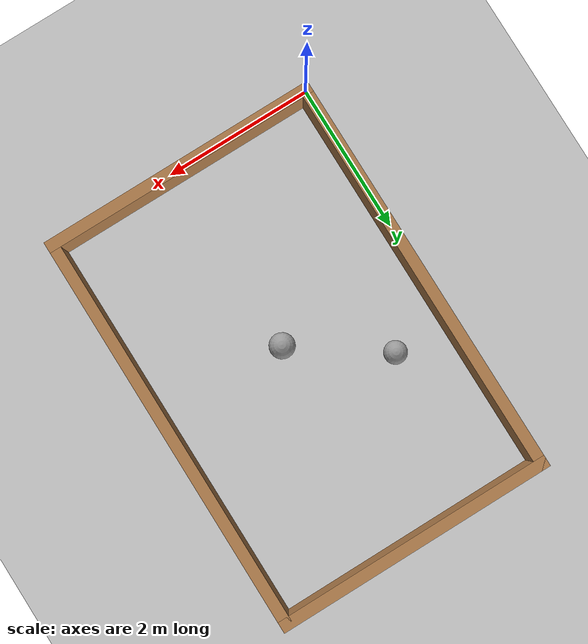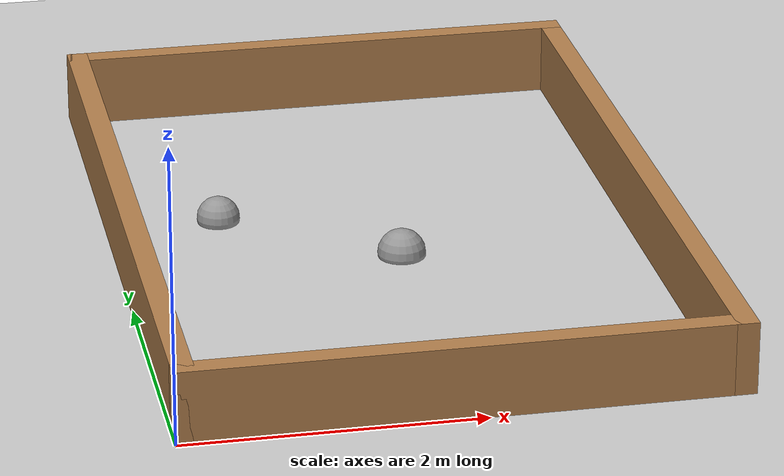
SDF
<sdf version="1.6">
 <world name="default">
  <light name="sun" type="directional">
   <pose>0 0 10 0 -0 0</pose>
   <diffuse>0.8 0.8 0.8 1</diffuse>
   <specular>0.2 0.2 0.2 1</specular>
   <attenuation>
    <range>1000</range>
    <constant>0.9</constant>
    <linear>0.01</linear>
    <quadratic>0.001</quadratic>
   </attenuation>
   <direction>-0.5 0.1 -0.9</direction>
  </light>
  <model name="ground_plane">
   <static>1</static>
   <link name="link">
    <collision name="collision">
     <geometry><plane><normal>0 0 1</normal><size>100 100</size></plane></geometry>
     <surface>
      <contact><collide_bitmask>65535</collide_bitmask></contact>
      <friction><ode><mu>100</mu><mu2>50</mu2></ode></friction>
     </surface>
    </collision>
    <visual name="visual">
     <cast_shadows>0</cast_shadows>
     <geometry><plane><normal>0 0 1</normal><size>100 100</size></plane></geometry>
     <material>
      <script><uri>file://media/materials/scripts/gazebo.material</uri><name>Gazebo/Grey</name></script>
     </material>
    </visual>
   </link>
  </model>
  <gravity>0 0 -9.8</gravity>
  <magnetic_field>6e-06 2.3e-05 -4.2e-05</magnetic_field>
  <atmosphere type="adiabatic"/>
  <physics name="default_physics" default="0" type="ode">
   <max_step_size>0.01</max_step_size>
   <real_time_factor>1</real_time_factor>
   <real_time_update_rate>100</real_time_update_rate>
  </physics>
  <scene><ambient>0.4 0.4 0.4 1</ambient><background>0.7 0.7 0.7 1</background><shadows>0</shadows></scene>
  <spherical_coordinates>
   <surface_model>EARTH_WGS84</surface_model>
   <latitude_deg>0</latitude_deg>
   <longitude_deg>0</longitude_deg>
   <elevation>0</elevation>
   <heading_deg>0</heading_deg>
  </spherical_coordinates>
  <model name="moon_arena">
   <pose>1.71379 2.75223 0 0 -0 0</pose>
   <link name="Wall_0">
    <collision name="Wall_0_Collision">
     <geometry><box><size>3.75 0.15 0.5</size></box></geometry>
     <pose>0 0 0.25 0 -0 0</pose>
    </collision>
    <visual name="Wall_0_Visual">
     <pose>0 0 0.25 0 -0 0</pose>
     <geometry><box><size>3.75 0.15 0.5</size></box></geometry>
     <material>
      <script><uri>file://media/materials/scripts/gazebo.material</uri><name>Gazebo/Wood</name></script>
      <ambient>1 1 1 1</ambient>
     </material>
     <meta><layer>0</layer></meta>
    </visual>
    <pose>0.1475 -2.675 0 0 -0 0</pose>
   </link>
   <link name="Wall_2">
    <collision name="Wall_2_Collision">
     <geometry><box><size>5.5 0.15 0.5</size></box></geometry>
     <pose>0 0 0.25 0 -0 0</pose>
    </collision>
    <visual name="Wall_2_Visual">
     <pose>0 0 0.25 0 -0 0</pose>
     <geometry><box><size>5.5 0.15 0.5</size></box></geometry>
     <material>
      <script><uri>file://media/materials/scripts/gazebo.material</uri><name>Gazebo/Wood</name></script>
      <ambient>1 1 1 1</ambient>
     </material>
     <meta><layer>0</layer></meta>
    </visual>
    <pose>1.9475 -0 0 0 -0 1.5708</pose>
   </link>
   <link name="Wall_7">
    <collision name="Wall_7_Collision">
     <geometry><box><size>5.5 0.15 0.5</size></box></geometry>
     <pose>0 0 0.25 0 -0 0</pose>
    </collision>
    <visual name="Wall_7_Visual">
     <pose>0 0 0.25 0 -0 0</pose>
     <geometry><box><size>5.5 0.15 0.5</size></box></geometry>
     <material>
      <script><uri>file://media/materials/scripts/gazebo.material</uri><name>Gazebo/Wood</name></script>
      <ambient>1 1 1 1</ambient>
     </material>
     <meta><layer>0</layer></meta>
    </visual>
    <pose>-1.6525 -0 0 0 -0 1.5708</pose>
   </link>
   <link name="Wall_8">
    <collision name="Wall_8_Collision">
     <geometry><box><size>3.75 0.15 0.5</size></box></geometry>
     <pose>0 0 0.25 0 -0 0</pose>
    </collision>
    <visual name="Wall_8_Visual">
     <pose>0 0 0.25 0 -0 0</pose>
     <geometry><box><size>3.75 0.15 0.5</size></box></geometry>
     <material>
      <script><uri>file://media/materials/scripts/gazebo.material</uri><name>Gazebo/Wood</name></script>
      <ambient>1 1 1 1</ambient>
     </material>
     <meta><layer>0</layer></meta>
    </visual>
    <pose>0.1475 2.675 0 0 -0 0</pose>
   </link>
   <static>1</static>
  </model>
  <model name="unit_sphere">
   <static>1</static>
   <pose>0.789463 3.37123 0.024556 0 -0 0</pose>
   <link name="link">
    <inertial>
     <mass>1</mass>
     <inertia><ixx>0.1</ixx><ixy>0</ixy><ixz>0</ixz><iyy>0.1</iyy><iyz>0</iyz><izz>0.1</izz></inertia>
    </inertial>
    <collision name="collision"><geometry><sphere><radius>0.152037</radius></sphere></geometry></collision>
    <visual name="visual">
     <geometry><sphere><radius>0.152037</radius></sphere></geometry>
     <material>
      <script><name>Gazebo/Grey</name><uri>file://media/materials/scripts/gazebo.material</uri></script>
     </material>
    </visual>
   </link>
  </model>
  <model name="unit_sphere_clone">
   <static>1</static>
   <pose>1.94073 2.55629 0.015874 0 -0 0</pose>
   <link name="link">
    <inertial>
     <mass>1</mass>
     <inertia><ixx>0.1</ixx><ixy>0</ixy><ixz>0</ixz><iyy>0.1</iyy><iyz>0</iyz><izz>0.1</izz></inertia>
    </inertial>
    <collision name="collision"><geometry><sphere><radius>0.168237</radius></sphere></geometry></collision>
    <visual name="visual">
     <geometry><sphere><radius>0.168237</radius></sphere></geometry>
     <material>
      <script><name>Gazebo/Grey</name><uri>file://media/materials/scripts/gazebo.material</uri></script>
     </material>
    </visual>
   </link>
  </model>
 </world>
</sdf>
